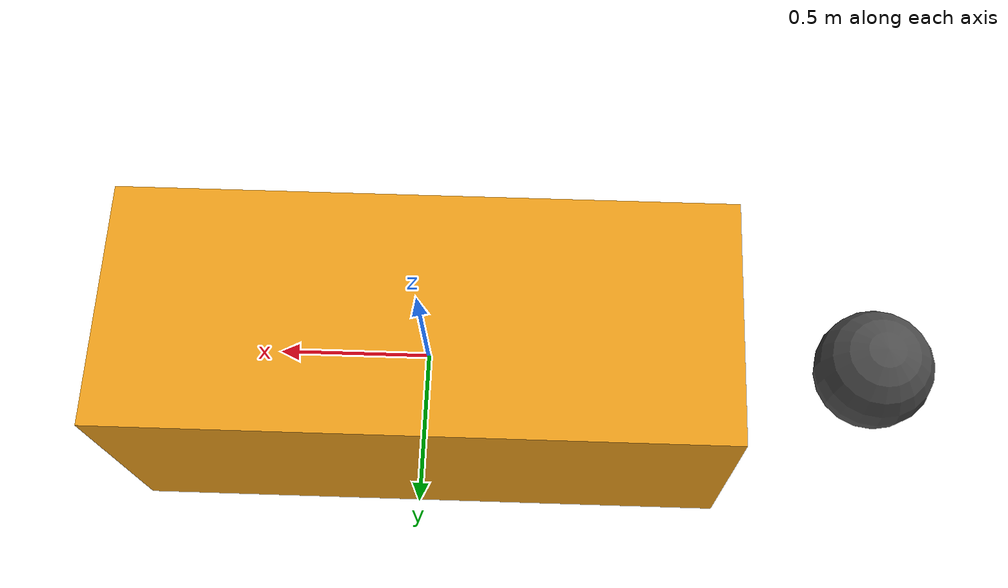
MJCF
<mujoco>
  <option gravity="0 0 0"/>
  <worldbody>
    <body name="rocket" pos="0 0 0">
      <geom type="box" size="1 0.4 0.4" density="1" rgba="0.9 0.6 0.1 1"/>
      <joint name="rocket_joint" type="free"/>
    </body>
    <body name="exhaust" pos="-1.5 0 0">
      <geom type="sphere" size="0.2" density="0.5" rgba="0.3 0.3 0.3 1"/>
      <joint type="free"/>
    </body>
  </worldbody>
</mujoco>
